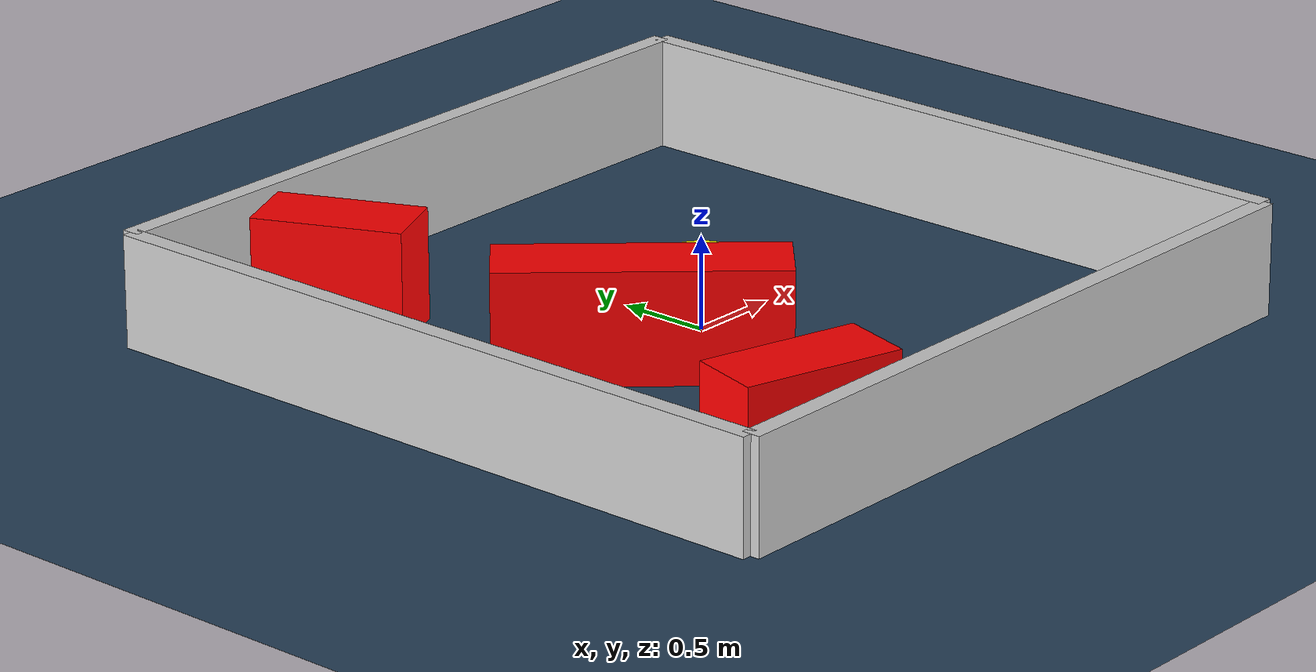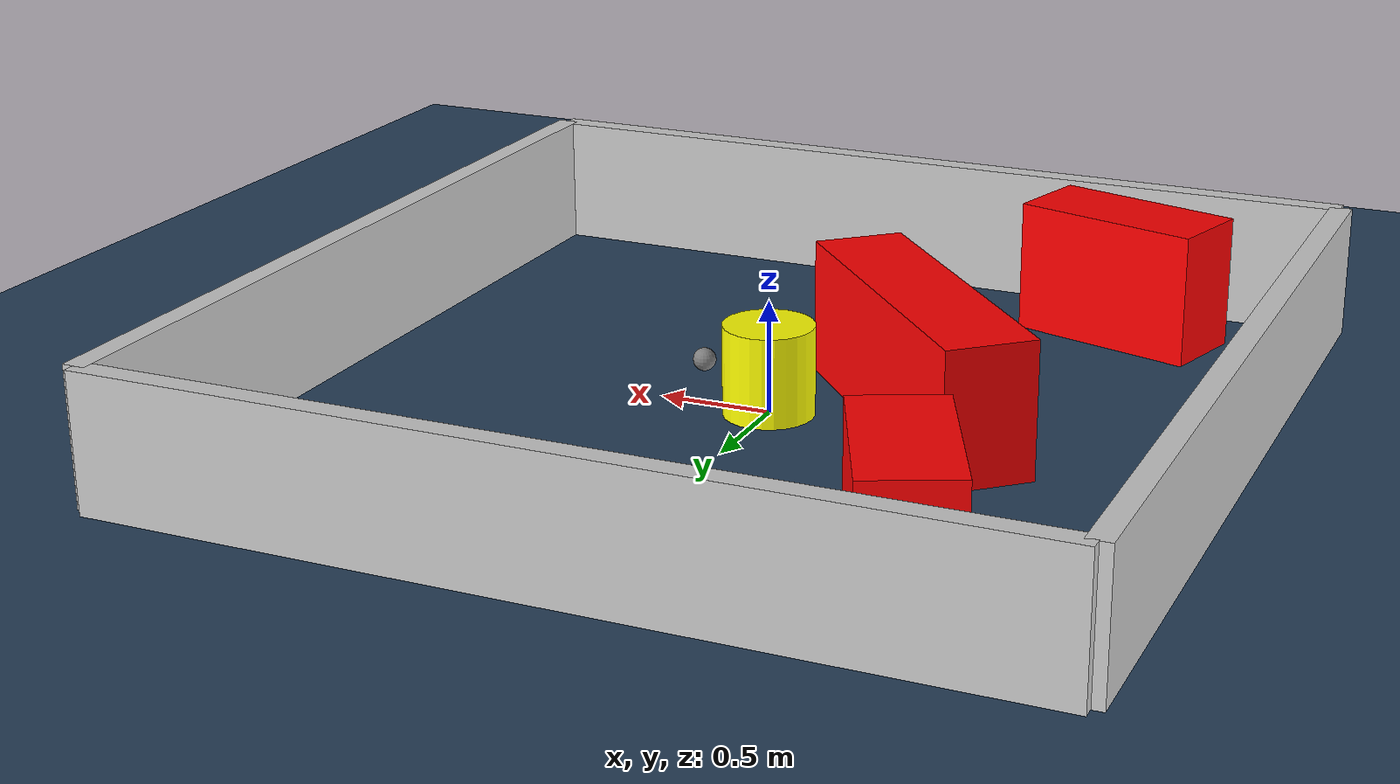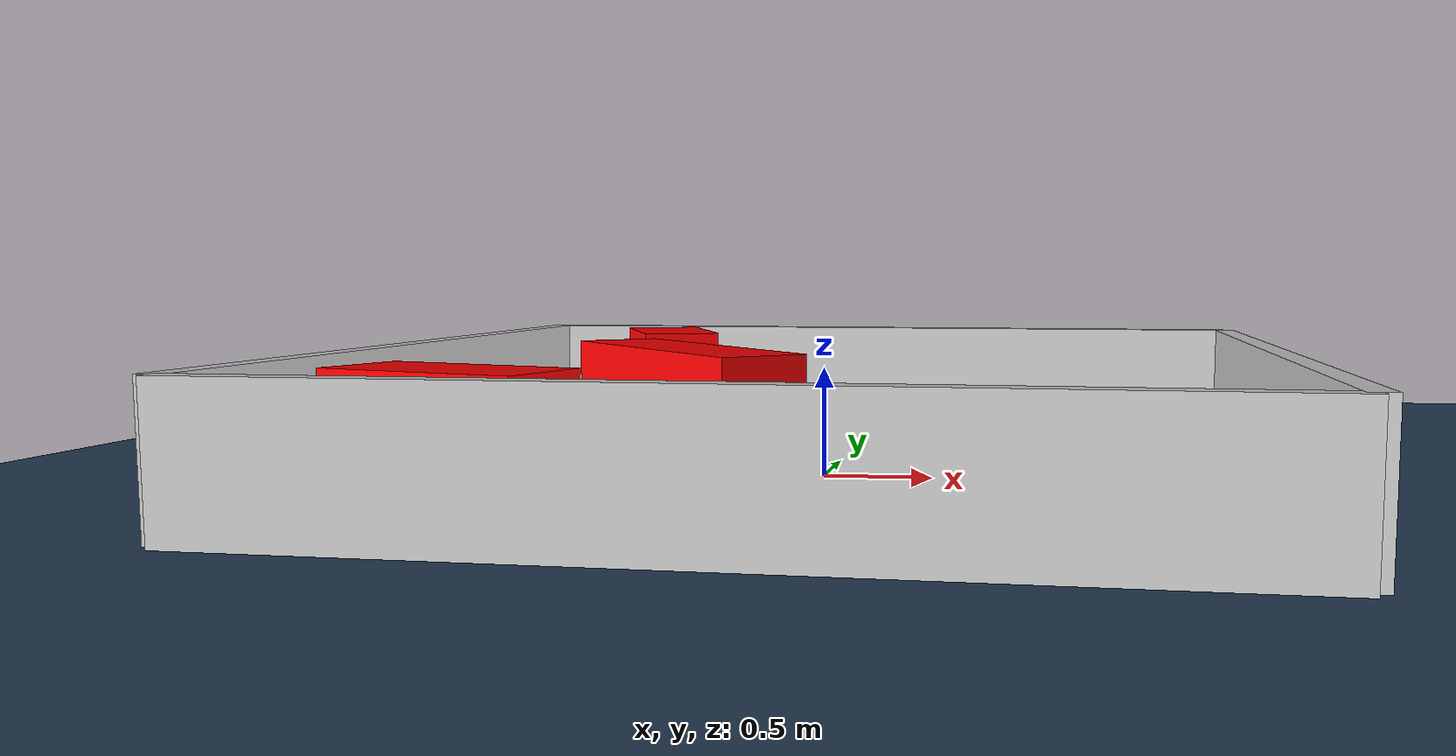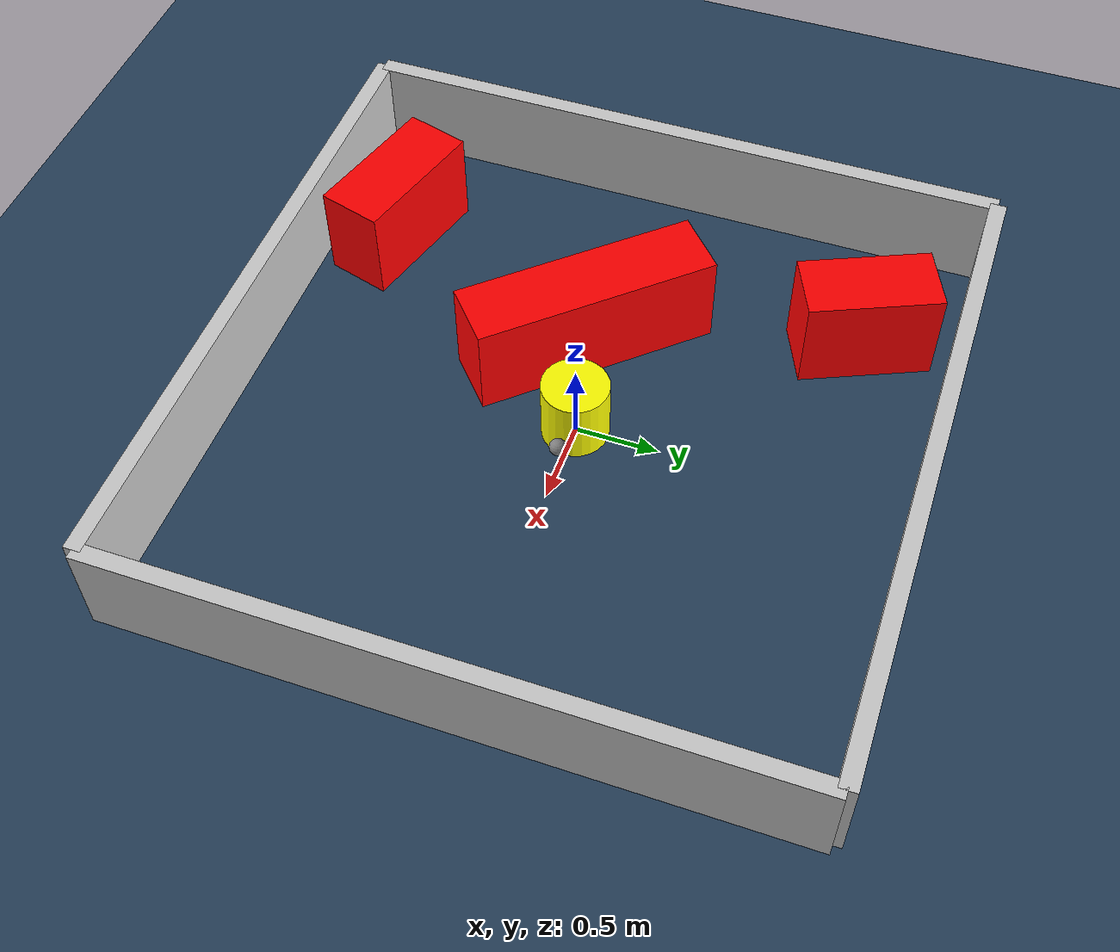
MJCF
<?xml version="1.0" ?>
<mujoco model="generated_environment">
  <option timestep="0.01" integrator="RK4" cone="elliptic"/>
  <default>
    <geom density="1"/>
  </default>
  <asset>
    <texture builtin="gradient" height="3072" rgb1="0.3 0.5 0.7" rgb2="0 0 0" type="skybox" width="512"/>
    <texture builtin="checker" height="300" mark="edge" markrgb="0.8 0.8 0.8" name="groundplane" rgb1="0.2 0.3 0.4" rgb2="0.1 0.2 0.3" type="2d" width="300"/>
    <material name="groundplane" reflectance="0.2" texrepeat="5 5" texture="groundplane" texuniform="true"/>
    <material name="robot" rgba="0.0 1.0 0.0 1"/>
  </asset>
  <worldbody>
    <light dir="0 0 -1" directional="true" pos="0 0 1.5"/>
    <geom condim="4" friction="1.0 0.005 0.001" material="groundplane" name="floor" size="0 0 0.05" type="plane"/>
    <body name="walls">
      <geom name="wall_1" condim="4" pos="-2.0 0.0 0.3" rgba="0.800000011920929 0.800000011920929 0.800000011920929 1.0" size="0.05 2.0 0.3" type="box"/>
      <geom name="wall_2" condim="4" pos="2.0 0.0 0.3" rgba="0.800000011920929 0.800000011920929 0.800000011920929 1.0" size="0.05 2.0 0.3" type="box"/>
      <geom name="wall_3" condim="4" pos="0.0 -2.0 0.3" rgba="0.800000011920929 0.800000011920929 0.800000011920929 1.0" size="2.0 0.05 0.3" type="box"/>
      <geom name="wall_4" condim="4" pos="0.0 2.0 0.3" rgba="0.800000011920929 0.800000011920929 0.800000011920929 1.0" size="2.0 0.05 0.3" type="box"/>
    </body>
    <body name="robot">
      <joint name="joint_x" type="slide" pos="0 0 0" axis="1 0 0"/>
      <joint name="joint_y" type="slide" pos="0 0 0" axis="0 1 0"/>
      <geom name="robot" type="sphere" pos="0.3 0.0 0.2" size="0.05" mass="5." friction="1.0 0.005 0.0001" condim="4" rgba="0.5 0.5 0.5 1.0"/>
      <site name="sensor_ball"/>
    </body>
    <body name="obstacle_movable_1">
      <geom name="obstacle_movable_1" condim="4" pos="0.0 0.0 0.2" euler="0 0 0.0" friction="1.0 0.005 0.001" rgba="1.0 1.0 0.0 1.0" size="0.2 0.2 0.0" type="cylinder" mass="0.1"/>
      <joint type="free"/>
    </body>
    <body name="obstacle_2_static">
      <geom name="obstacle_2_static" condim="4" pos="-1.1106956852600653 -1.559354879794383 0.3" euler="0 0 164.06694968429017" friction="1.0 0.005 0.001" rgba="1 0 0 1" size="0.4346520995453177 0.2 0.3" type="box"/>
    </body>
    <body name="obstacle_3_static">
      <geom name="obstacle_3_static" condim="4" pos="-0.6229850850440694 -0.14935150378001016 0.3" euler="0 0 311.9154920469159" friction="1.0 0.005 0.001" rgba="1 0 0 1" size="0.7424612981882948 0.2 0.3" type="box"/>
    </body>
    <body name="obstacle_4_static">
      <geom name="obstacle_4_static" condim="4" pos="-1.1292275370268352 1.41359189383992 0.3" euler="0 0 113.93614273108149" friction="1.0 0.005 0.001" rgba="1 0 0 1" size="0.39876386024802435 0.2 0.3" type="box"/>
    </body>
  </worldbody>
  <actuator>
    <motor name="actuator_x" joint="joint_x" gear="1" ctrlrange="-1 1"/>
    <motor name="actuator_y" joint="joint_y" gear="1" ctrlrange="-1 1"/>
  </actuator>
</mujoco>
